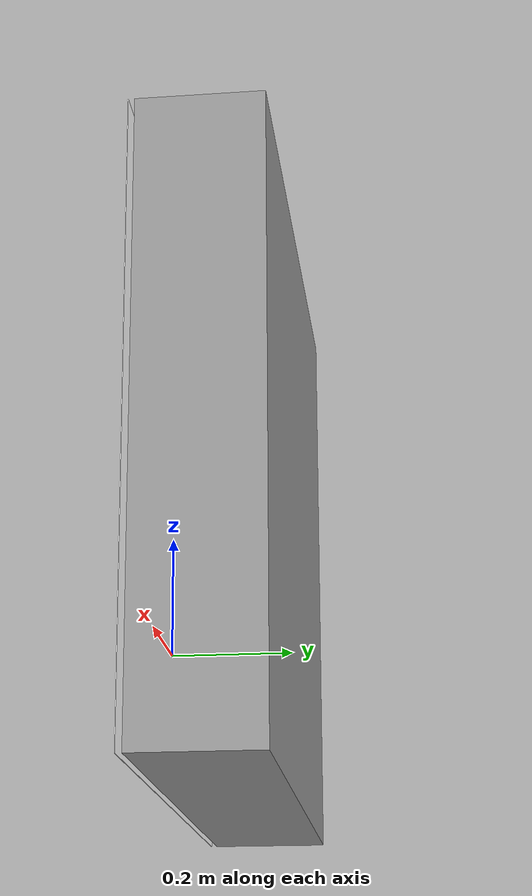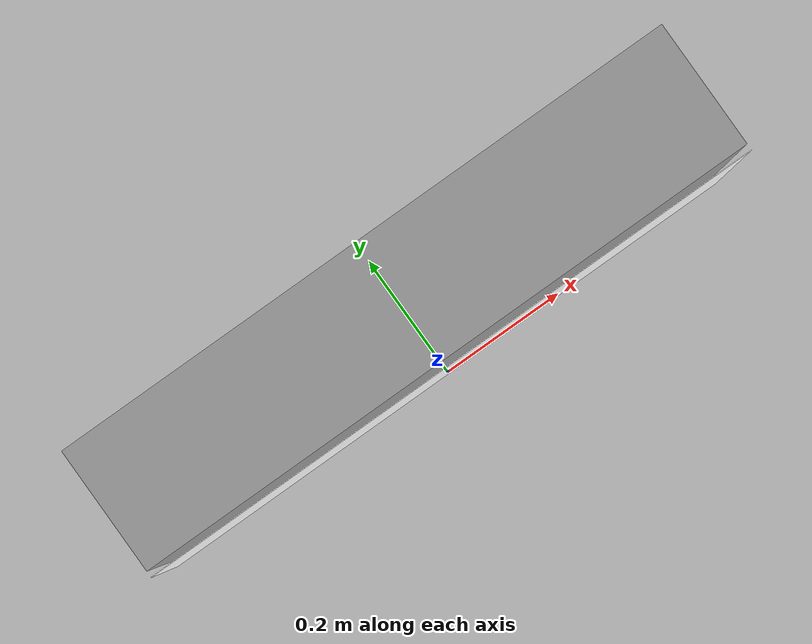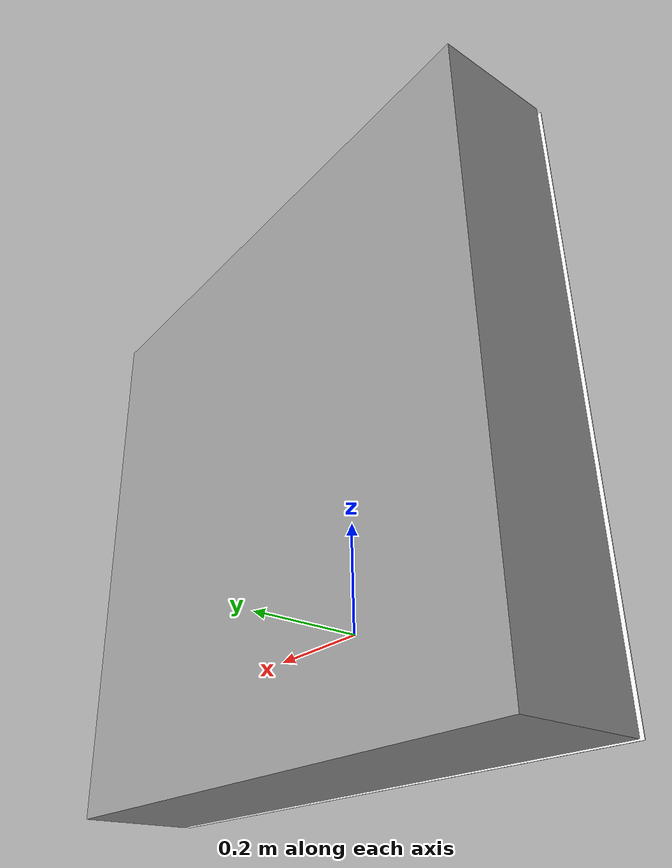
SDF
<?xml version='1.0'?>
<sdf version='1.6'>
  <model name='marker21_box'>
    <link name='marker'>
      <inertial>
        <mass>0.1</mass>
        <inertia>
          <ixx>0</ixx>
          <ixy>0</ixy>
          <ixz>0</ixz>
          <iyy>0</iyy>
          <iyz>0</iyz>
          <izz>0</izz>
        </inertia>
        <pose>0 0 0 0 -0 0</pose>
      </inertial>
      <self_collide>1</self_collide>
      <kinematic>0</kinematic>
      <gravity>1</gravity>
      <enable_wind>0</enable_wind>
      <pose>0 0 0.25 0 0 0</pose> <!--CHANGED-->
      <visual name='visual'>
        <geometry>
          <box>
            <size>1 0.001 1</size> <!--CHANGED-->
          </box>
        </geometry>
        <material>
          <script>
            <uri>/root/model_editor_models/marker21/material/scripts</uri> <!--CHANGED-->
            <uri>/root/model_editor_models/marker21/material/textures</uri> <!--CHANGED-->
            <name>Aruco/marker21</name>
          </script>
          <shader type='pixel'>
            <normal_map>__default__</normal_map>
          </shader>
          <emissive>0 0 0 1</emissive>
          <ambient>1 1 1 1</ambient>
          <diffuse>1 1 1 1</diffuse>
          <specular>0 0 0 1</specular>
        </material>
        <pose>0 0 0 0 -0 0</pose>
        <transparency>0</transparency>
        <cast_shadows>1</cast_shadows>
      </visual>
      <collision name='collision'>
        <laser_retro>0</laser_retro>
        <max_contacts>10</max_contacts>
        <pose>0 0 0 0 -0 0</pose>
        <geometry>
          <box>
            <size>1 0.001 1</size> <!--CHANGED-->
          </box>
        </geometry>
        <surface>
          <friction>
            <ode>
              <mu>1</mu>
              <mu2>1</mu2>
              <fdir1>0 0 0</fdir1>
              <slip1>0</slip1>
              <slip2>0</slip2>
            </ode>
            <torsional>
              <coefficient>1</coefficient>
              <patch_radius>0</patch_radius>
              <surface_radius>0</surface_radius>
              <use_patch_radius>1</use_patch_radius>
              <ode>
                <slip>0</slip>
              </ode>
            </torsional>
          </friction>
          <bounce>
            <restitution_coefficient>0</restitution_coefficient>
            <threshold>1e+06</threshold>
          </bounce>
          <contact>
            <collide_without_contact>0</collide_without_contact>
            <collide_without_contact_bitmask>1</collide_without_contact_bitmask>
            <collide_bitmask>1</collide_bitmask>
            <ode>
              <soft_cfm>0</soft_cfm>
              <soft_erp>0.2</soft_erp>
              <kp>1e+13</kp>
              <kd>1</kd>
              <max_vel>0.01</max_vel>
              <min_depth>0</min_depth>
            </ode>
            <bullet>
              <split_impulse>1</split_impulse>
              <split_impulse_penetration_threshold>-0.01</split_impulse_penetration_threshold>
              <soft_cfm>0</soft_cfm>
              <soft_erp>0.2</soft_erp>
              <kp>1e+13</kp>
              <kd>1</kd>
            </bullet>
          </contact>
        </surface>
      </collision>
    </link>
    <link name='link_1'>
      <inertial>
        <mass>1</mass>
        <inertia>
          <ixx>0.166667</ixx>
          <ixy>0</ixy>
          <ixz>0</ixz>
          <iyy>0.166667</iyy>
          <iyz>0</iyz>
          <izz>0.166667</izz>
        </inertia>
        <pose>0 0 0 0 -0 0</pose>
      </inertial>
      <pose>0 0.11 0.25 0 0 0</pose> <!--CHANGED-->
      <gravity>1</gravity>
      <self_collide>0</self_collide>
      <kinematic>0</kinematic>
      <enable_wind>0</enable_wind>
      <visual name='visual'>
        <pose>0 0 0 0 -0 0</pose>
        <geometry>
          <box>
            <size>1 0.2 1</size> <!--CHANGED-->
          </box>
        </geometry>
        <material>
          <lighting>1</lighting>
          <script>
            <uri>file://media/materials/scripts/gazebo.material</uri>
            <name>Gazebo/Grey</name>
          </script>
          <shader type='pixel'>
            <normal_map>__default__</normal_map>
          </shader>
          <emissive>0 0 0 1</emissive>
          <ambient>0.3 0.3 0.3 1</ambient>
          <diffuse>0.7 0.7 0.7 1</diffuse>
          <specular>0.01 0.01 0.01 1</specular>
        </material>
        <transparency>0</transparency>
        <cast_shadows>1</cast_shadows>
      </visual>
      <collision name='collision'>
        <laser_retro>0</laser_retro>
        <max_contacts>10</max_contacts>
        <pose>0 0 0 0 -0 0</pose>
        <geometry>
          <box>
            <size>1 0.2 1</size> <!--CHANGED-->
          </box>
        </geometry>
        <surface>
          <friction>
            <ode>
              <mu>1</mu>
              <mu2>1</mu2>
              <fdir1>0 0 0</fdir1>
              <slip1>0</slip1>
              <slip2>0</slip2>
            </ode>
            <torsional>
              <coefficient>1</coefficient>
              <patch_radius>0</patch_radius>
              <surface_radius>0</surface_radius>
              <use_patch_radius>1</use_patch_radius>
              <ode>
                <slip>0</slip>
              </ode>
            </torsional>
          </friction>
          <bounce>
            <restitution_coefficient>0</restitution_coefficient>
            <threshold>1e+06</threshold>
          </bounce>
          <contact>
            <collide_without_contact>0</collide_without_contact>
            <collide_without_contact_bitmask>1</collide_without_contact_bitmask>
            <collide_bitmask>1</collide_bitmask>
            <ode>
              <soft_cfm>0</soft_cfm>
              <soft_erp>0.2</soft_erp>
              <kp>1e+13</kp>
              <kd>1</kd>
              <max_vel>0.01</max_vel>
              <min_depth>0</min_depth>
            </ode>
            <bullet>
              <split_impulse>1</split_impulse>
              <split_impulse_penetration_threshold>-0.01</split_impulse_penetration_threshold>
              <soft_cfm>0</soft_cfm>
              <soft_erp>0.2</soft_erp>
              <kp>1e+13</kp>
              <kd>1</kd>
            </bullet>
          </contact>
        </surface>
      </collision>
    </link>
    <joint name='link_1_JOINT_3' type='fixed'>
      <parent>link_1</parent>
      <child>marker</child>
      <pose>0 0 0 0 -0 0</pose>
      <physics>
        <ode>
          <limit>
            <cfm>0</cfm>
            <erp>0.2</erp>
          </limit>
          <suspension>
            <cfm>0</cfm>
            <erp>0.2</erp>
          </suspension>
        </ode>
      </physics>
    </joint>
    <static>0</static>
    <allow_auto_disable>1</allow_auto_disable>
  </model>
</sdf>
